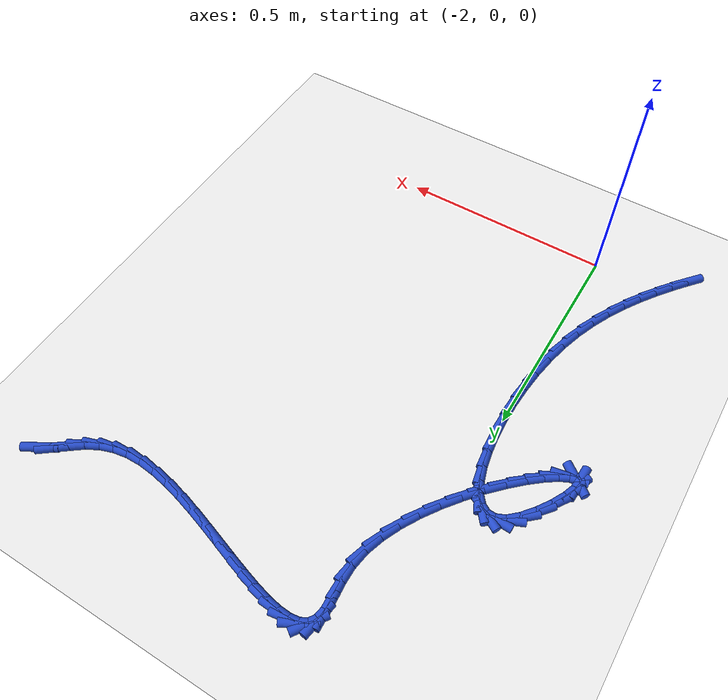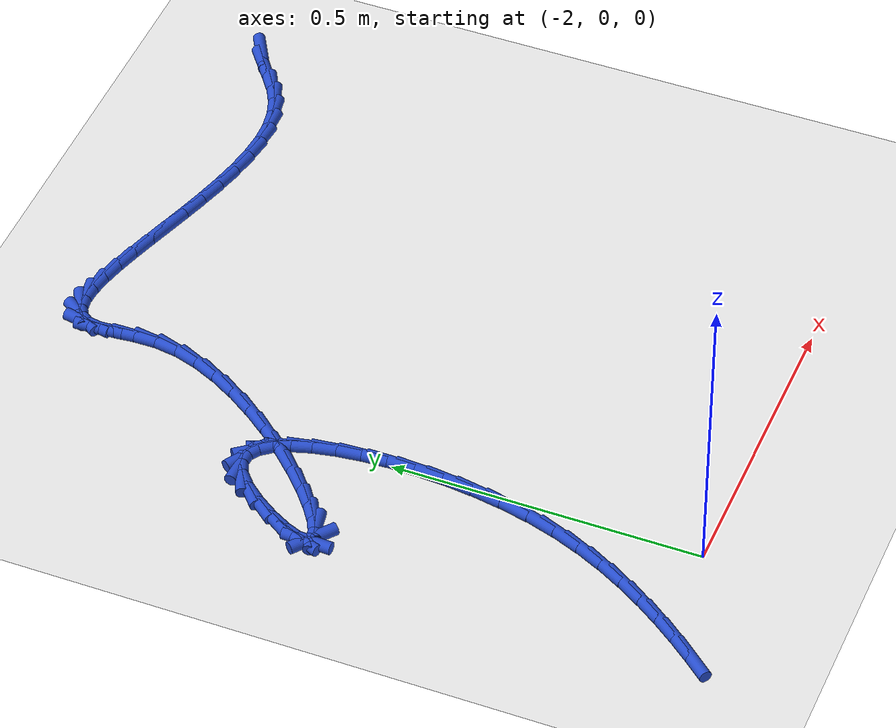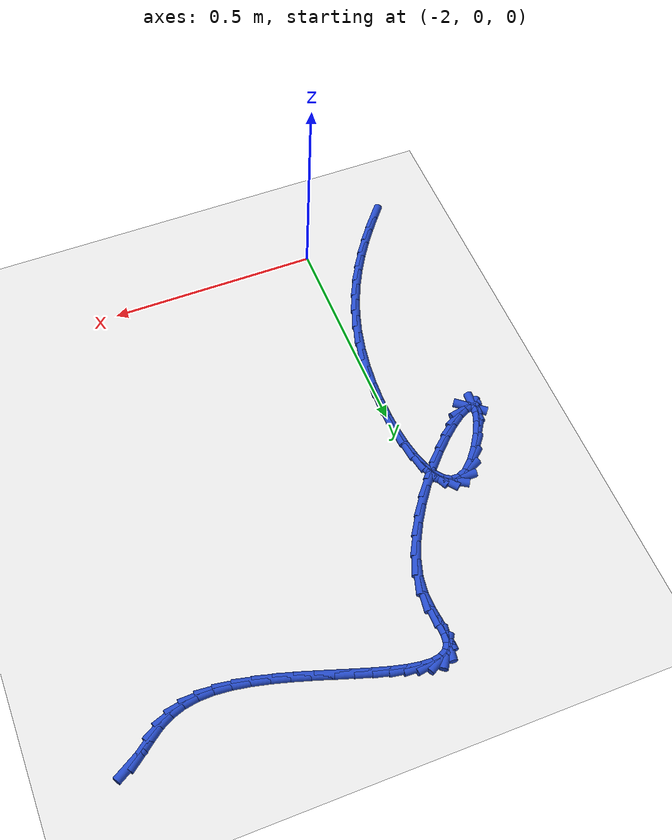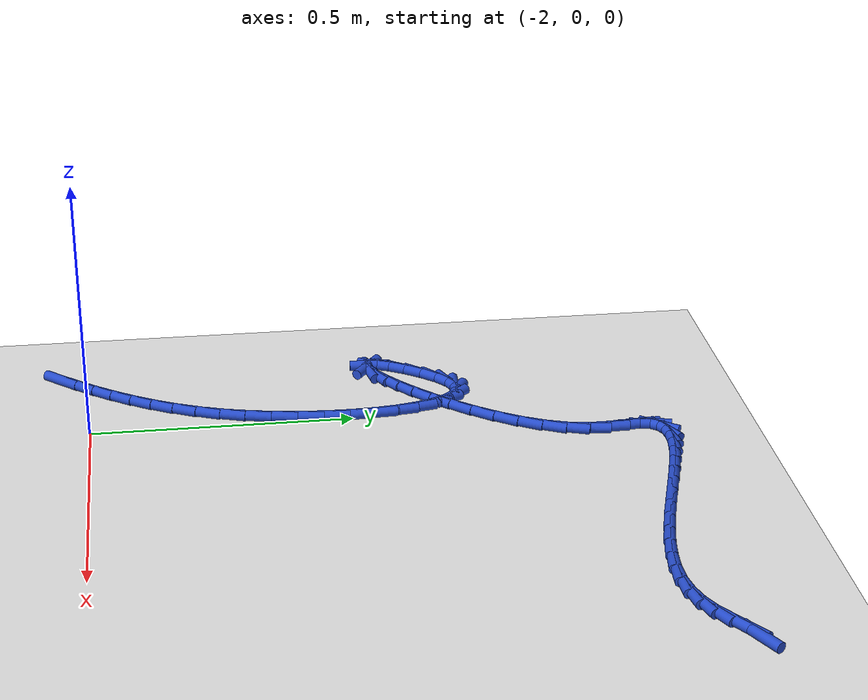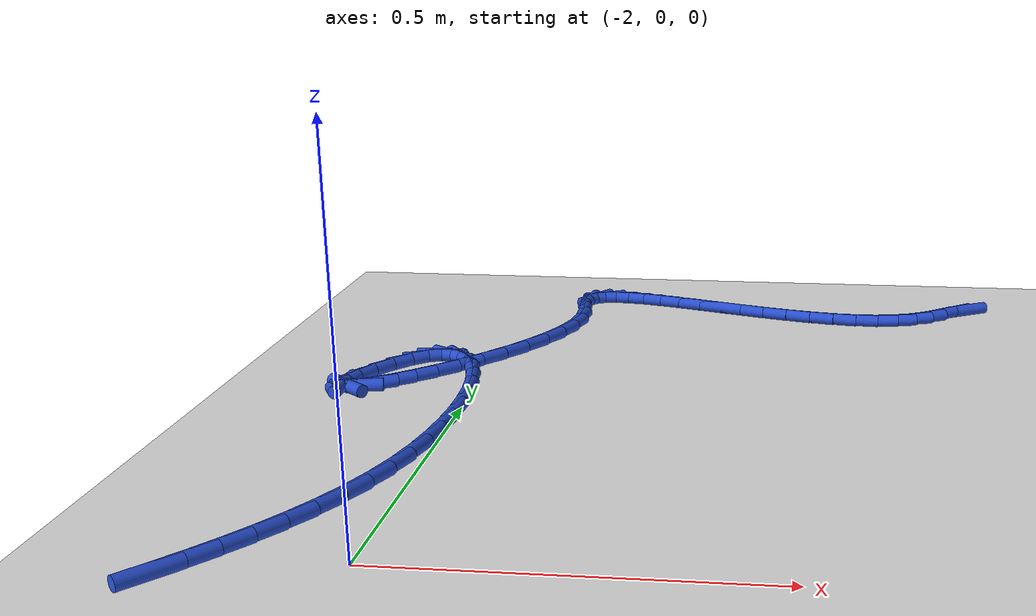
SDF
<sdf version="1.6">
 <world name="default">
  <model name="ground_plane">
   <static>1</static>
   <link name="link">
    <collision name="collision">
     <geometry><plane><normal>0 0 1</normal><size>100 100</size></plane></geometry>
     <surface><friction><ode><mu>100</mu><mu2>50</mu2></ode></friction></surface>
    </collision>
    <visual name="visual">
     <cast_shadows>0</cast_shadows>
     <geometry><plane><normal>0 0 1</normal><size>100 100</size></plane></geometry>
     <material>
      <script><uri>file://media/materials/scripts/gazebo.material</uri><name>Gazebo/WhiteGlow</name></script>
     </material>
    </visual>
   </link>
  </model>
  <model name="line">
   <link name="link_64">
    <pose>-1.206669266291144 1.0596655299338253 0.01 0 1.57 0.5175995134805523</pose>
    <collision name="collision">
     <geometry><cylinder><radius>0.01</radius><length>0.08</length></cylinder></geometry>
    </collision>
    <visual name="visual">
     <material>
      <script><name>Gazebo/Blue</name><uri>file://media/materials/scripts/gazebo.material</uri></script>
     </material>
     <geometry><cylinder><radius>0.01</radius><length>0.08</length></cylinder></geometry>
    </visual>
   </link>
   <link name="link_65">
    <pose>-1.232804659422792 1.044784591988934 0.01 0 1.57 0.6555652553825779</pose>
    <collision name="collision">
     <geometry><cylinder><radius>0.01</radius><length>0.08</length></cylinder></geometry>
    </collision>
    <visual name="visual">
     <material>
      <script><name>Gazebo/Blue</name><uri>file://media/materials/scripts/gazebo.material</uri></script>
     </material>
     <geometry><cylinder><radius>0.01</radius><length>0.08</length></cylinder></geometry>
    </visual>
   </link>
   <link name="link_66">
    <pose>-1.258061829822408 1.0253612400490868 0.01 0 1.57 0.6363050705771549</pose>
    <collision name="collision">
     <geometry><cylinder><radius>0.01</radius><length>0.08</length></cylinder></geometry>
    </collision>
    <visual name="visual">
     <material>
      <script><name>Gazebo/Blue</name><uri>file://media/materials/scripts/gazebo.material</uri></script>
     </material>
     <geometry><cylinder><radius>0.01</radius><length>0.08</length></cylinder></geometry>
    </visual>
   </link>
   <link name="link_67">
    <pose>-1.2839239353646603 1.0062538934817673 0.01 0 1.57 0.49170861377376074</pose>
    <collision name="collision">
     <geometry><cylinder><radius>0.01</radius><length>0.08</length></cylinder></geometry>
    </collision>
    <visual name="visual">
     <material>
      <script><name>Gazebo/Blue</name><uri>file://media/materials/scripts/gazebo.material</uri></script>
     </material>
     <geometry><cylinder><radius>0.01</radius><length>0.08</length></cylinder></geometry>
    </visual>
   </link>
   <link name="link_68">
    <pose>-1.3116494786950115 0.9914045119575835 0.01 0 1.57 0.32426076989597935</pose>
    <collision name="collision">
     <geometry><cylinder><radius>0.01</radius><length>0.08</length></cylinder></geometry>
    </collision>
    <visual name="visual">
     <material>
      <script><name>Gazebo/Blue</name><uri>file://media/materials/scripts/gazebo.material</uri></script>
     </material>
     <geometry><cylinder><radius>0.01</radius><length>0.08</length></cylinder></geometry>
    </visual>
   </link>
   <link name="link_69">
    <pose>-1.3416207906851785 0.9813304106114602 0.01 0 1.57 0.16456609002247868</pose>
    <collision name="collision">
     <geometry><cylinder><radius>0.01</radius><length>0.08</length></cylinder></geometry>
    </collision>
    <visual name="visual">
     <material>
      <script><name>Gazebo/Blue</name><uri>file://media/materials/scripts/gazebo.material</uri></script>
     </material>
     <geometry><cylinder><radius>0.01</radius><length>0.08</length></cylinder></geometry>
    </visual>
   </link>
   <link name="link_70">
    <pose>-1.3740650473435598 0.9759424592775572 0.01 0 1.57 0.023366383114004758</pose>
    <collision name="collision">
     <geometry><cylinder><radius>0.01</radius><length>0.08</length></cylinder></geometry>
    </collision>
    <visual name="visual">
     <material>
      <script><name>Gazebo/Blue</name><uri>file://media/materials/scripts/gazebo.material</uri></script>
     </material>
     <geometry><cylinder><radius>0.01</radius><length>0.08</length></cylinder></geometry>
    </visual>
   </link>
   <link name="link_71">
    <pose>-1.4091711572137604 0.9751220071402835 0.01 0 1.57 -0.08705940791361798</pose>
    <collision name="collision">
     <geometry><cylinder><radius>0.01</radius><length>0.08</length></cylinder></geometry>
    </collision>
    <visual name="visual">
     <material>
      <script><name>Gazebo/Blue</name><uri>file://media/materials/scripts/gazebo.material</uri></script>
     </material>
     <geometry><cylinder><radius>0.01</radius><length>0.08</length></cylinder></geometry>
    </visual>
   </link>
   <link name="link_72">
    <pose>-1.4466668438716304 0.9783946317128341 0.01 0 1.57 -0.16773106625651762</pose>
    <collision name="collision">
     <geometry><cylinder><radius>0.01</radius><length>0.08</length></cylinder></geometry>
    </collision>
    <visual name="visual">
     <material>
      <script><name>Gazebo/Blue</name><uri>file://media/materials/scripts/gazebo.material</uri></script>
     </material>
     <geometry><cylinder><radius>0.01</radius><length>0.08</length></cylinder></geometry>
    </visual>
   </link>
   <link name="link_73">
    <pose>-1.4859743520786806 0.9850502551512327 0.01 0 1.57 -0.22609242675220548</pose>
    <collision name="collision">
     <geometry><cylinder><radius>0.01</radius><length>0.08</length></cylinder></geometry>
    </collision>
    <visual name="visual">
     <material>
      <script><name>Gazebo/Blue</name><uri>file://media/materials/scripts/gazebo.material</uri></script>
     </material>
     <geometry><cylinder><radius>0.01</radius><length>0.08</length></cylinder></geometry>
    </visual>
   </link>
   <link name="link_74">
    <pose>-1.5265104663654756 0.9943745874284855 0.01 0 1.57 -0.2673237663432125</pose>
    <collision name="collision">
     <geometry><cylinder><radius>0.01</radius><length>0.08</length></cylinder></geometry>
    </collision>
    <visual name="visual">
     <material>
      <script><name>Gazebo/Blue</name><uri>file://media/materials/scripts/gazebo.material</uri></script>
     </material>
     <geometry><cylinder><radius>0.01</radius><length>0.08</length></cylinder></geometry>
    </visual>
   </link>
   <link name="link_75">
    <pose>-1.56769197126258 1.0056533385175987 0.01 0 1.57 -0.29469629398357206</pose>
    <collision name="collision">
     <geometry><cylinder><radius>0.01</radius><length>0.08</length></cylinder></geometry>
    </collision>
    <visual name="visual">
     <material>
      <script><name>Gazebo/Blue</name><uri>file://media/materials/scripts/gazebo.material</uri></script>
     </material>
     <geometry><cylinder><radius>0.01</radius><length>0.08</length></cylinder></geometry>
    </visual>
   </link>
   <link name="link_76">
    <pose>-1.6089356513005593 1.0181722183915798 0.01 0 1.57 -0.3100030523345195</pose>
    <collision name="collision">
     <geometry><cylinder><radius>0.01</radius><length>0.08</length></cylinder></geometry>
    </collision>
    <visual name="visual">
     <material>
      <script><name>Gazebo/Blue</name><uri>file://media/materials/scripts/gazebo.material</uri></script>
     </material>
     <geometry><cylinder><radius>0.01</radius><length>0.08</length></cylinder></geometry>
    </visual>
   </link>
   <link name="link_77">
    <pose>-1.6496582910099777 1.0312169370234345 0.01 0 1.57 -0.31378192407972205</pose>
    <collision name="collision">
     <geometry><cylinder><radius>0.01</radius><length>0.08</length></cylinder></geometry>
    </collision>
    <visual name="visual">
     <material>
      <script><name>Gazebo/Blue</name><uri>file://media/materials/scripts/gazebo.material</uri></script>
     </material>
     <geometry><cylinder><radius>0.01</radius><length>0.08</length></cylinder></geometry>
    </visual>
   </link>
   <link name="link_78">
    <pose>-1.6892766749214 1.0440732043861694 0.01 0 1.57 -0.3052876605009464</pose>
    <collision name="collision">
     <geometry><cylinder><radius>0.01</radius><length>0.08</length></cylinder></geometry>
    </collision>
    <visual name="visual">
     <material>
      <script><name>Gazebo/Blue</name><uri>file://media/materials/scripts/gazebo.material</uri></script>
     </material>
     <geometry><cylinder><radius>0.01</radius><length>0.08</length></cylinder></geometry>
    </visual>
   </link>
   <link name="link_79">
    <pose>-1.727207587565391 1.0560267304527906 0.01 0 1.57 -0.2821288381428502</pose>
    <collision name="collision">
     <geometry><cylinder><radius>0.01</radius><length>0.08</length></cylinder></geometry>
    </collision>
    <visual name="visual">
     <material>
      <script><name>Gazebo/Blue</name><uri>file://media/materials/scripts/gazebo.material</uri></script>
     </material>
     <geometry><cylinder><radius>0.01</radius><length>0.08</length></cylinder></geometry>
    </visual>
   </link>
   <link name="link_80">
    <pose>-1.762867813472515 1.0663632251963053 0.01 0 1.57 -0.23933606349010128</pose>
    <collision name="collision">
     <geometry><cylinder><radius>0.01</radius><length>0.08</length></cylinder></geometry>
    </collision>
    <visual name="visual">
     <material>
      <script><name>Gazebo/Blue</name><uri>file://media/materials/scripts/gazebo.material</uri></script>
     </material>
     <geometry><cylinder><radius>0.01</radius><length>0.08</length></cylinder></geometry>
    </visual>
   </link>
   <link name="link_81">
    <pose>-1.7956741371733385 1.0743683985897199 0.01 0 1.57 -0.1672911689909195</pose>
    <collision name="collision">
     <geometry><cylinder><radius>0.01</radius><length>0.08</length></cylinder></geometry>
    </collision>
    <visual name="visual">
     <material>
      <script><name>Gazebo/Blue</name><uri>file://media/materials/scripts/gazebo.material</uri></script>
     </material>
     <geometry><cylinder><radius>0.01</radius><length>0.08</length></cylinder></geometry>
    </visual>
   </link>
   <link name="link_82">
    <pose>-1.8250433431984248 1.0793279606060406 0.01 0 1.57 -0.04729070886477995</pose>
    <collision name="collision">
     <geometry><cylinder><radius>0.01</radius><length>0.08</length></cylinder></geometry>
    </collision>
    <visual name="visual">
     <material>
      <script><name>Gazebo/Blue</name><uri>file://media/materials/scripts/gazebo.material</uri></script>
     </material>
     <geometry><cylinder><radius>0.01</radius><length>0.08</length></cylinder></geometry>
    </visual>
   </link>
   <link name="link_83">
    <pose>-1.8503922160783395 1.0805276212182744 0.01 0 1.57 0.15655264928805063</pose>
    <collision name="collision">
     <geometry><cylinder><radius>0.01</radius><length>0.08</length></cylinder></geometry>
    </collision>
    <visual name="visual">
     <material>
      <script><name>Gazebo/Blue</name><uri>file://media/materials/scripts/gazebo.material</uri></script>
     </material>
     <geometry><cylinder><radius>0.01</radius><length>0.08</length></cylinder></geometry>
    </visual>
   </link>
   <link name="link_84">
    <pose>-1.871137540343647 1.0772530903994273 0.01 0 1.57 0.4981831342453082</pose>
    <collision name="collision">
     <geometry><cylinder><radius>0.01</radius><length>0.08</length></cylinder></geometry>
    </collision>
    <visual name="visual">
     <material>
      <script><name>Gazebo/Blue</name><uri>file://media/materials/scripts/gazebo.material</uri></script>
     </material>
     <geometry><cylinder><radius>0.01</radius><length>0.08</length></cylinder></geometry>
    </visual>
   </link>
   <link name="link_85">
    <pose>-1.8866961005249119 1.0687900781225061 0.01 0 1.57 0.9726755317891169</pose>
    <collision name="collision">
     <geometry><cylinder><radius>0.01</radius><length>0.08</length></cylinder></geometry>
    </collision>
    <visual name="visual">
     <material>
      <script><name>Gazebo/Blue</name><uri>file://media/materials/scripts/gazebo.material</uri></script>
     </material>
     <geometry><cylinder><radius>0.01</radius><length>0.08</length></cylinder></geometry>
    </visual>
   </link>
   <link name="link_86">
    <pose>-1.8964846811526996 1.0544242943605169 0.01 0 1.57 1.4064694968007687</pose>
    <collision name="collision">
     <geometry><cylinder><radius>0.01</radius><length>0.08</length></cylinder></geometry>
    </collision>
    <visual name="visual">
     <material>
      <script><name>Gazebo/Blue</name><uri>file://media/materials/scripts/gazebo.material</uri></script>
     </material>
     <geometry><cylinder><radius>0.01</radius><length>0.08</length></cylinder></geometry>
    </visual>
   </link>
   <link name="link_87">
    <pose>-1.8999609698094233 1.033460330338864 0.01 0 1.57 -1.5132455910562665</pose>
    <collision name="collision">
     <geometry><cylinder><radius>0.01</radius><length>0.08</length></cylinder></geometry>
    </collision>
    <visual name="visual">
     <material>
      <script><name>Gazebo/Blue</name><uri>file://media/materials/scripts/gazebo.material</uri></script>
     </material>
     <geometry><cylinder><radius>0.01</radius><length>0.08</length></cylinder></geometry>
    </visual>
   </link>
   <link name="link_88">
    <pose>-1.8983807500420453 1.006032796125245 0.01 0 1.57 -1.4816029275184341</pose>
    <collision name="collision">
     <geometry><cylinder><radius>0.01</radius><length>0.08</length></cylinder></geometry>
    </collision>
    <visual name="visual">
     <material>
      <script><name>Gazebo/Blue</name><uri>file://media/materials/scripts/gazebo.material</uri></script>
     </material>
     <geometry><cylinder><radius>0.01</radius><length>0.08</length></cylinder></geometry>
    </visual>
   </link>
   <link name="link_89">
    <pose>-1.8954635941579328 0.9734136109938082 0.01 0 1.57 -1.561022737656933</pose>
    <collision name="collision">
     <geometry><cylinder><radius>0.01</radius><length>0.08</length></cylinder></geometry>
    </collision>
    <visual name="visual">
     <material>
      <script><name>Gazebo/Blue</name><uri>file://media/materials/scripts/gazebo.material</uri></script>
     </material>
     <geometry><cylinder><radius>0.01</radius><length>0.08</length></cylinder></geometry>
    </visual>
   </link>
   <link name="link_90">
    <pose>-1.8951072703981815 0.9369569512202924 0.01 0 1.57 1.4214436407326319</pose>
    <collision name="collision">
     <geometry><cylinder><radius>0.01</radius><length>0.08</length></cylinder></geometry>
    </collision>
    <visual name="visual">
     <material>
      <script><name>Gazebo/Blue</name><uri>file://media/materials/scripts/gazebo.material</uri></script>
     </material>
     <geometry><cylinder><radius>0.01</radius><length>0.08</length></cylinder></geometry>
    </visual>
   </link>
   <link name="link_91">
    <pose>-1.900970496354553 0.897991696139016 0.01 0 1.57 1.2628480574588812</pose>
    <collision name="collision">
     <geometry><cylinder><radius>0.01</radius><length>0.08</length></cylinder></geometry>
    </collision>
    <visual name="visual">
     <material>
      <script><name>Gazebo/Blue</name><uri>file://media/materials/scripts/gazebo.material</uri></script>
     </material>
     <geometry><cylinder><radius>0.01</radius><length>0.08</length></cylinder></geometry>
    </visual>
   </link>
   <link name="link_92">
    <pose>-1.913836075319578 0.8575423885942547 0.01 0 1.57 1.1429241148706655</pose>
    <collision name="collision">
     <geometry><cylinder><radius>0.01</radius><length>0.08</length></cylinder></geometry>
    </collision>
    <visual name="visual">
     <material>
      <script><name>Gazebo/Blue</name><uri>file://media/materials/scripts/gazebo.material</uri></script>
     </material>
     <geometry><cylinder><radius>0.01</radius><length>0.08</length></cylinder></geometry>
    </visual>
   </link>
   <link name="link_93">
    <pose>-1.9325842839123513 0.8164322412688995 0.01 0 1.57 1.0502441468076873</pose>
    <collision name="collision">
     <geometry><cylinder><radius>0.01</radius><length>0.08</length></cylinder></geometry>
    </collision>
    <visual name="visual">
     <material>
      <script><name>Gazebo/Blue</name><uri>file://media/materials/scripts/gazebo.material</uri></script>
     </material>
     <geometry><cylinder><radius>0.01</radius><length>0.08</length></cylinder></geometry>
    </visual>
   </link>
   <link name="link_94">
    <pose>-1.9560615052057686 0.7754808801454685 0.01 0 1.57 0.9758295506851785</pose>
    <collision name="collision">
     <geometry><cylinder><radius>0.01</radius><length>0.08</length></cylinder></geometry>
    </collision>
    <visual name="visual">
     <material>
      <script><name>Gazebo/Blue</name><uri>file://media/materials/scripts/gazebo.material</uri></script>
     </material>
     <geometry><cylinder><radius>0.01</radius><length>0.08</length></cylinder></geometry>
    </visual>
   </link>
   <link name="link_95">
    <pose>-1.9831141222727269 0.7355079312064805 0.01 0 1.57 0.9133080258040378</pose>
    <collision name="collision">
     <geometry><cylinder><radius>0.01</radius><length>0.08</length></cylinder></geometry>
    </collision>
    <visual name="visual">
     <material>
      <script><name>Gazebo/Blue</name><uri>file://media/materials/scripts/gazebo.material</uri></script>
     </material>
     <geometry><cylinder><radius>0.01</radius><length>0.08</length></cylinder></geometry>
    </visual>
   </link>
   <link name="link_96">
    <pose>-2.0125885181861225 0.6973330204344542 0.01 0 1.57 0.8578908628230701</pose>
    <collision name="collision">
     <geometry><cylinder><radius>0.01</radius><length>0.08</length></cylinder></geometry>
    </collision>
    <visual name="visual">
     <material>
      <script><name>Gazebo/Blue</name><uri>file://media/materials/scripts/gazebo.material</uri></script>
     </material>
     <geometry><cylinder><radius>0.01</radius><length>0.08</length></cylinder></geometry>
    </visual>
   </link>
   <link name="link_97">
    <pose>-2.0433310760188506 0.6617757738119078 0.01 0 1.57 0.8054480744735907</pose>
    <collision name="collision">
     <geometry><cylinder><radius>0.01</radius><length>0.08</length></cylinder></geometry>
    </collision>
    <visual name="visual">
     <material>
      <script><name>Gazebo/Blue</name><uri>file://media/materials/scripts/gazebo.material</uri></script>
     </material>
     <geometry><cylinder><radius>0.01</radius><length>0.08</length></cylinder></geometry>
    </visual>
   </link>
   <link name="link_98">
    <pose>-2.0741881788438077 0.62965581732136 0.01 0 1.57 0.7515180291842666</pose>
    <collision name="collision">
     <geometry><cylinder><radius>0.01</radius><length>0.08</length></cylinder></geometry>
    </collision>
    <visual name="visual">
     <material>
      <script><name>Gazebo/Blue</name><uri>file://media/materials/scripts/gazebo.material</uri></script>
     </material>
     <geometry><cylinder><radius>0.01</radius><length>0.08</length></cylinder></geometry>
    </visual>
   </link>
   <link name="link_99">
    <pose>-2.10400620973389 0.6017927769453294 0.01 0 1.57 0.6897050750005533</pose>
    <collision name="collision">
     <geometry><cylinder><radius>0.01</radius><length>0.08</length></cylinder></geometry>
    </collision>
    <visual name="visual">
     <material>
      <script><name>Gazebo/Blue</name><uri>file://media/materials/scripts/gazebo.material</uri></script>
     </material>
     <geometry><cylinder><radius>0.01</radius><length>0.08</length></cylinder></geometry>
    </visual>
   </link>
   <link name="link_100">
    <pose>-2.1316315517619926 0.5790062786663344 0.01 0 1.57 0.6078177018483295</pose>
    <collision name="collision">
     <geometry><cylinder><radius>0.01</radius><length>0.08</length></cylinder></geometry>
    </collision>
    <visual name="visual">
     <material>
      <script><name>Gazebo/Blue</name><uri>file://media/materials/scripts/gazebo.material</uri></script>
     </material>
     <geometry><cylinder><radius>0.01</radius><length>0.08</length></cylinder></geometry>
    </visual>
   </link>
   <link name="link_101">
    <pose>-2.155910588001014 0.5621159484668936 0.01 0 1.57 0.4751075353014911</pose>
    <collision name="collision">
     <geometry><cylinder><radius>0.01</radius><length>0.08</length></cylinder></geometry>
    </collision>
    <visual name="visual">
     <material>
      <script><name>Gazebo/Blue</name><uri>file://media/materials/scripts/gazebo.material</uri></script>
     </material>
     <geometry><cylinder><radius>0.01</radius><length>0.08</length></cylinder></geometry>
    </visual>
   </link>
   <link name="link_102">
    <pose>-2.175689701523847 0.5519414123295256 0.01 0 1.57 0.18470302898970317</pose>
    <collision name="collision">
     <geometry><cylinder><radius>0.01</radius><length>0.08</length></cylinder></geometry>
    </collision>
    <visual name="visual">
     <material>
      <script><name>Gazebo/Blue</name><uri>file://media/materials/scripts/gazebo.material</uri></script>
     </material>
     <geometry><cylinder><radius>0.01</radius><length>0.08</length></cylinder></geometry>
    </visual>
   </link>
   <link name="link_103">
    <pose>-2.1898152754033906 0.5493022962367486 0.01 0 1.57 -0.663068607938551</pose>
    <collision name="collision">
     <geometry><cylinder><radius>0.01</radius><length>0.08</length></cylinder></geometry>
    </collision>
    <visual name="visual">
     <material>
      <script><name>Gazebo/Blue</name><uri>file://media/materials/scripts/gazebo.material</uri></script>
     </material>
     <geometry><cylinder><radius>0.01</radius><length>0.08</length></cylinder></geometry>
    </visual>
   </link>
   <link name="link_104">
    <pose>-2.1971336927125398 0.5550182261710815 0.01 0 1.57 1.5276882605667035</pose>
    <collision name="collision">
     <geometry><cylinder><radius>0.01</radius><length>0.08</length></cylinder></geometry>
    </collision>
    <visual name="visual">
     <material>
      <script><name>Gazebo/Blue</name><uri>file://media/materials/scripts/gazebo.material</uri></script>
     </material>
     <geometry><cylinder><radius>0.01</radius><length>0.08</length></cylinder></geometry>
    </visual>
   </link>
   <link name="link_105">
    <pose>-2.1964913934520647 0.5699087421375357 0.01 0 1.57 1.2068091852266547</pose>
    <collision name="collision">
     <geometry><cylinder><radius>0.01</radius><length>0.08</length></cylinder></geometry>
    </collision>
    <visual name="visual">
     <material>
      <script><name>Gazebo/Blue</name><uri>file://media/materials/scripts/gazebo.material</uri></script>
     </material>
     <geometry><cylinder><radius>0.01</radius><length>0.08</length></cylinder></geometry>
    </visual>
   </link>
   <link name="link_106">
    <pose>-2.187385911107536 0.5938100452249053 0.01 0 1.57 1.076481109464602</pose>
    <collision name="collision">
     <geometry><cylinder><radius>0.01</radius><length>0.08</length></cylinder></geometry>
    </collision>
    <visual name="visual">
     <material>
      <script><name>Gazebo/Blue</name><uri>file://media/materials/scripts/gazebo.material</uri></script>
     </material>
     <geometry><cylinder><radius>0.01</radius><length>0.08</length></cylinder></geometry>
    </visual>
   </link>
   <link name="link_107">
    <pose>-2.171581186140828 0.6231354084297489 0.01 0 1.57 0.983516081887218</pose>
    <collision name="collision">
     <geometry><cylinder><radius>0.01</radius><length>0.08</length></cylinder></geometry>
    </collision>
    <visual name="visual">
     <material>
      <script><name>Gazebo/Blue</name><uri>file://media/materials/scripts/gazebo.material</uri></script>
     </material>
     <geometry><cylinder><radius>0.01</radius><length>0.08</length></cylinder></geometry>
    </visual>
   </link>
   <link name="link_108">
    <pose>-2.1513339884820737 0.6535537901355741 0.01 0 1.57 0.8807970025373411</pose>
    <collision name="collision">
     <geometry><cylinder><radius>0.01</radius><length>0.08</length></cylinder></geometry>
    </collision>
    <visual name="visual">
     <material>
      <script><name>Gazebo/Blue</name><uri>file://media/materials/scripts/gazebo.material</uri></script>
     </material>
     <geometry><cylinder><radius>0.01</radius><length>0.08</length></cylinder></geometry>
    </visual>
   </link>
   <link name="link_109">
    <pose>-2.1289010880614074 0.680734148725888 0.01 0 1.57 0.7200515382270436</pose>
    <collision name="collision">
     <geometry><cylinder><radius>0.01</radius><length>0.08</length></cylinder></geometry>
    </collision>
    <visual name="visual">
     <material>
      <script><name>Gazebo/Blue</name><uri>file://media/materials/scripts/gazebo.material</uri></script>
     </material>
     <geometry><cylinder><radius>0.01</radius><length>0.08</length></cylinder></geometry>
    </visual>
   </link>
   <link name="link_110">
    <pose>-2.1065369230262787 0.7003510793299069 0.01 0 1.57 0.4180585338702061</pose>
    <collision name="collision">
     <geometry><cylinder><radius>0.01</radius><length>0.08</length></cylinder></geometry>
    </collision>
    <visual name="visual">
     <material>
      <script><name>Gazebo/Blue</name><uri>file://media/materials/scripts/gazebo.material</uri></script>
     </material>
     <geometry><cylinder><radius>0.01</radius><length>0.08</length></cylinder></geometry>
    </visual>
   </link>
   <link name="link_111">
    <pose>-2.0859004089294 0.7095187663882507 0.01 0 1.57 -0.04430900518378445</pose>
    <collision name="collision">
     <geometry><cylinder><radius>0.01</radius><length>0.08</length></cylinder></geometry>
    </collision>
    <visual name="visual">
     <material>
      <script><name>Gazebo/Blue</name><uri>file://media/materials/scripts/gazebo.material</uri></script>
     </material>
     <geometry><cylinder><radius>0.01</radius><length>0.08</length></cylinder></geometry>
    </visual>
   </link>
   <link name="link_112">
    <pose>-2.0672682646437455 0.7086926539075147 0.01 0 1.57 -0.5388016193680759</pose>
    <collision name="collision">
     <geometry><cylinder><radius>0.01</radius><length>0.08</length></cylinder></geometry>
    </collision>
    <visual name="visual">
     <material>
      <script><name>Gazebo/Blue</name><uri>file://media/materials/scripts/gazebo.material</uri></script>
     </material>
     <geometry><cylinder><radius>0.01</radius><length>0.08</length></cylinder></geometry>
    </visual>
   </link>
   <link name="link_113">
    <pose>-2.0507216048262817 0.6988010306547043 0.01 0 1.57 -0.8975119124636999</pose>
    <collision name="collision">
     <geometry><cylinder><radius>0.01</radius><length>0.08</length></cylinder></geometry>
    </collision>
    <visual name="visual">
     <material>
      <script><name>Gazebo/Blue</name><uri>file://media/materials/scripts/gazebo.material</uri></script>
     </material>
     <geometry><cylinder><radius>0.01</radius><length>0.08</length></cylinder></geometry>
    </visual>
   </link>
   <link name="link_114">
    <pose>-2.036341544133976 0.680772185396825 0.01 0 1.57 -1.1226899876703271</pose>
    <collision name="collision">
     <geometry><cylinder><radius>0.01</radius><length>0.08</length></cylinder></geometry>
    </collision>
    <visual name="visual">
     <material>
      <script><name>Gazebo/Blue</name><uri>file://media/materials/scripts/gazebo.material</uri></script>
     </material>
     <geometry><cylinder><radius>0.01</radius><length>0.08</length></cylinder></geometry>
    </visual>
   </link>
   <link name="link_115">
    <pose>-2.024209197223796 0.655534406900882 0.01 0 1.57 -1.2692413019536766</pose>
    <collision name="collision">
     <geometry><cylinder><radius>0.01</radius><length>0.08</length></cylinder></geometry>
    </collision>
    <visual name="visual">
     <material>
      <script><name>Gazebo/Blue</name><uri>file://media/materials/scripts/gazebo.material</uri></script>
     </material>
     <geometry><cylinder><radius>0.01</radius><length>0.08</length></cylinder></geometry>
    </visual>
   </link>
   <link name="link_116">
    <pose>-2.0144056787527096 0.6240159839338814 0.01 0 1.57 -1.3728943811428078</pose>
    <collision name="collision">
     <geometry><cylinder><radius>0.01</radius><length>0.08</length></cylinder></geometry>
    </collision>
    <visual name="visual">
     <material>
      <script><name>Gazebo/Blue</name><uri>file://media/materials/scripts/gazebo.material</uri></script>
     </material>
     <geometry><cylinder><radius>0.01</radius><length>0.08</length></cylinder></geometry>
    </visual>
   </link>
   <link name="link_117">
    <pose>-2.007012103377684 0.5871452052628283 0.01 0 1.57 -1.452629574843653</pose>
    <collision name="collision">
     <geometry><cylinder><radius>0.01</radius><length>0.08</length></cylinder></geometry>
    </collision>
    <visual name="visual">
     <material>
      <script><name>Gazebo/Blue</name><uri>file://media/materials/scripts/gazebo.material</uri></script>
     </material>
     <geometry><cylinder><radius>0.01</radius><length>0.08</length></cylinder></geometry>
    </visual>
   </link>
   <link name="link_118">
    <pose>-2.0021095857556883 0.5458503596547282 0.01 0 1.57 -1.5188156714234398</pose>
    <collision name="collision">
     <geometry><cylinder><radius>0.01</radius><length>0.08</length></cylinder></geometry>
    </collision>
    <visual name="visual">
     <material>
      <script><name>Gazebo/Blue</name><uri>file://media/materials/scripts/gazebo.material</uri></script>
     </material>
     <geometry><cylinder><radius>0.01</radius><length>0.08</length></cylinder></geometry>
    </visual>
   </link>
   <link name="link_119">
    <pose>-1.9997792405436878 0.5010597358765866 0.01 0 1.57 1.5639772871893816</pose>
    <collision name="collision">
     <geometry><cylinder><radius>0.01</radius><length>0.08</length></cylinder></geometry>
    </collision>
    <visual name="visual">
     <material>
      <script><name>Gazebo/Blue</name><uri>file://media/materials/scripts/gazebo.material</uri></script>
     </material>
     <geometry><cylinder><radius>0.01</radius><length>0.08</length></cylinder></geometry>
    </visual>
   </link>
   <link name="link_120">
    <pose>-2.000102182398652 0.45370162269540926 0.01 0 1.57 1.508478933695762</pose>
    <collision name="collision">
     <geometry><cylinder><radius>0.01</radius><length>0.08</length></cylinder></geometry>
    </collision>
    <visual name="visual">
     <material>
      <script><name>Gazebo/Blue</name><uri>file://media/materials/scripts/gazebo.material</uri></script>
     </material>
     <geometry><cylinder><radius>0.01</radius><length>0.08</length></cylinder></geometry>
    </visual>
   </link>
   <link name="link_121">
    <pose>-2.0031595259775465 0.40470430887820136 0.01 0 1.57 1.4531948476031027</pose>
    <collision name="collision">
     <geometry><cylinder><radius>0.01</radius><length>0.08</length></cylinder></geometry>
    </collision>
    <visual name="visual">
     <material>
      <script><name>Gazebo/Blue</name><uri>file://media/materials/scripts/gazebo.material</uri></script>
     </material>
     <geometry><cylinder><radius>0.01</radius><length>0.08</length></cylinder></geometry>
    </visual>
   </link>
   <link name="link_122">
    <pose>-2.0090323859373407 0.3549960831919686 0.01 0 1.57 1.395422464144561</pose>
    <collision name="collision">
     <geometry><cylinder><radius>0.01</radius><length>0.08</length></cylinder></geometry>
    </collision>
    <visual name="visual">
     <material>
      <script><name>Gazebo/Blue</name><uri>file://media/materials/scripts/gazebo.material</uri></script>
     </material>
     <geometry><cylinder><radius>0.01</radius><length>0.08</length></cylinder></geometry>
    </visual>
   </link>
   <link name="link_123">
    <pose>-2.0178018769350015 0.30550523440371724 0.01 0 1.57 1.332429227156901</pose>
    <collision name="collision">
     <geometry><cylinder><radius>0.01</radius><length>0.08</length></cylinder></geometry>
    </collision>
    <visual name="visual">
     <material>
      <script><name>Gazebo/Blue</name><uri>file://media/materials/scripts/gazebo.material</uri></script>
     </material>
     <geometry><cylinder><radius>0.01</radius><length>0.08</length></cylinder></geometry>
    </visual>
   </link>
   <link name="link_124">
    <pose>-2.029549113627496 0.2571600512804513 0.01 0 1.57 1.2619868708692512</pose>
    <collision name="collision">
     <geometry><cylinder><radius>0.01</radius><length>0.08</length></cylinder></geometry>
    </collision>
    <visual name="visual">
     <material>
      <script><name>Gazebo/Blue</name><uri>file://media/materials/scripts/gazebo.material</uri></script>
     </material>
     <geometry><cylinder><radius>0.01</radius><length>0.08</length></cylinder></geometry>
    </visual>
   </link>
   <link name="link_125">
    <pose>-2.0443288700937354 0.2108307482887046 0.01 0 1.57 1.1908459096803055</pose>
    <collision name="collision">
     <geometry><cylinder><radius>0.01</radius><length>0.08</length></cylinder></geometry>
    </collision>
    <visual name="visual">
     <material>
      <script><name>Gazebo/Blue</name><uri>file://media/materials/scripts/gazebo.material</uri></script>
     </material>
     <geometry><cylinder><radius>0.01</radius><length>0.08</length></cylinder></geometry>
    </visual>
   </link>
   <link name="link_126">
    <pose>-2.0619205765369935 0.1667804764155374 0.01 0 1.57 1.1247986138583805</pose>
    <collision name="collision">
     <geometry><cylinder><radius>0.01</radius><length>0.08</length></cylinder></geometry>
    </collision>
    <visual name="visual">
     <material>
      <script><name>Gazebo/Blue</name><uri>file://media/materials/scripts/gazebo.material</uri></script>
     </material>
     <geometry><cylinder><radius>0.01</radius><length>0.08</length></cylinder></geometry>
    </visual>
   </link>
   <link name="link_127">
    <pose>-2.0819396581891776 0.12491079724152858 0.01 0 1.57 1.0646037488035962</pose>
    <collision name="collision">
     <geometry><cylinder><radius>0.01</radius><length>0.08</length></cylinder></geometry>
    </collision>
    <visual name="visual">
     <material>
      <script><name>Gazebo/Blue</name><uri>file://media/materials/scripts/gazebo.material</uri></script>
     </material>
     <geometry><cylinder><radius>0.01</radius><length>0.08</length></cylinder></geometry>
    </visual>
   </link>
   <link name="link_128">
    <pose>-2.1039993590134864 0.08511846320244178 0.01 0 1.57 1.010731067987797</pose>
    <collision name="collision">
     <geometry><cylinder><radius>0.01</radius><length>0.08</length></cylinder></geometry>
    </collision>
    <visual name="visual">
     <material>
      <script><name>Gazebo/Blue</name><uri>file://media/materials/scripts/gazebo.material</uri></script>
     </material>
     <geometry><cylinder><radius>0.01</radius><length>0.08</length></cylinder></geometry>
    </visual>
   </link>
   <link name="link_129">
    <pose>-2.127712922973119 0.04730022673404103 0.01 0 1.57 0.963485776687156</pose>
    <collision name="collision">
     <geometry><cylinder><radius>0.01</radius><length>0.08</length></cylinder></geometry>
    </collision>
    <visual name="visual">
     <material>
      <script><name>Gazebo/Blue</name><uri>file://media/materials/scripts/gazebo.material</uri></script>
     </material>
     <geometry><cylinder><radius>0.01</radius><length>0.08</length></cylinder></geometry>
    </visual>
   </link>
   <link name="link_130">
    <pose>-2.1526935940312737 0.011352840272090027 0.01 0 1.57 0.9230734646323715</pose>
    <collision name="collision">
     <geometry><cylinder><radius>0.01</radius><length>0.08</length></cylinder></geometry>
    </collision>
    <visual name="visual">
     <material>
      <script><name>Gazebo/Blue</name><uri>file://media/materials/scripts/gazebo.material</uri></script>
     </material>
     <geometry><cylinder><radius>0.01</radius><length>0.08</length></cylinder></geometry>
    </visual>
   </link>
   <link name="link_131">
    <pose>-2.1785546161511484 -0.02282694374764729 0.01 0 1.57 0.8896696610599694</pose>
    <collision name="collision">
     <geometry><cylinder><radius>0.01</radius><length>0.08</length></cylinder></geometry>
    </collision>
    <visual name="visual">
     <material>
      <script><name>Gazebo/Blue</name><uri>file://media/materials/scripts/gazebo.material</uri></script>
     </material>
     <geometry><cylinder><radius>0.01</radius><length>0.08</length></cylinder></geometry>
    </visual>
   </link>
   <link name="link_132">
    <pose>-2.204909233295943 -0.055342372889407146 0.01 0 1.57 0.8634904410935317</pose>
    <collision name="collision">
     <geometry><cylinder><radius>0.01</radius><length>0.08</length></cylinder></geometry>
    </collision>
    <visual name="visual">
     <material>
      <script><name>Gazebo/Blue</name><uri>file://media/materials/scripts/gazebo.material</uri></script>
     </material>
     <geometry><cylinder><radius>0.01</radius><length>0.08</length></cylinder></geometry>
    </visual>
   </link>
  </model>
 </world>
</sdf>
